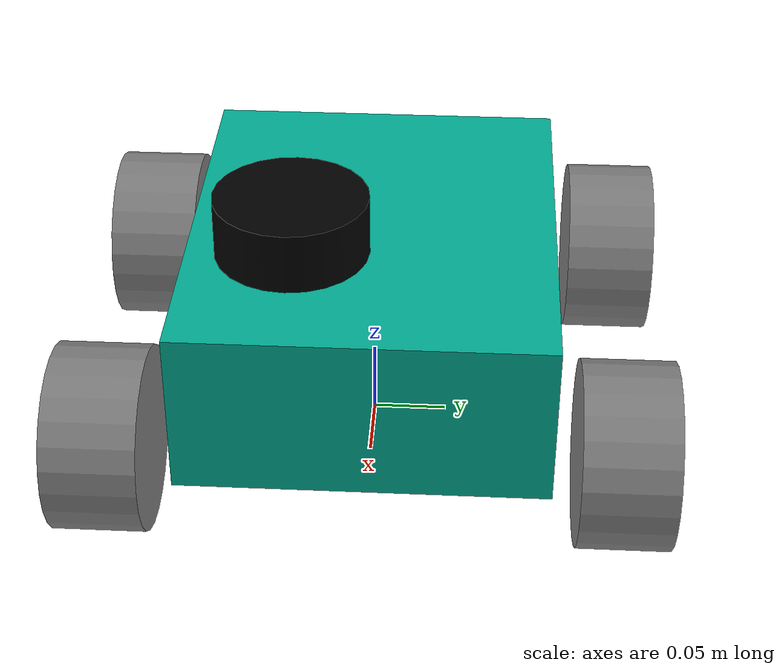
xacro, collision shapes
<?xml version="1.0"?>
<robot xmlns:xacro="http://www.ros.org/wiki/xacro"  name="robot">

    <!-- Example link -->

    <xacro:include filename="inertia.xacro"/>

    <xacro:include filename="kbot_rover.xacro"/>

    <xacro:include filename="lidar.xacro"/>

    <material name="white">
        <color rgba="1 1 1 1"/>
    </material>

    <material name="grey">
        <color rgba="0.5 0.5 0.5 1"/>
    </material>

    <material name="black">
        <color rgba="0 0 0 1"/>
    </material>

    <material name="teal">
        <color rgba="0 0.7 0.6 1"/>
    </material>

    <material name="cyan">
        <color rgba="0 0.5 0.5 1"/>
    </material>

    <material name="green">
        <color rgba="0 0.5 0.1 1"/>
    </material>

    <!-- BASE -->
    <link name="base_link">
    </link>

    <!-- BASE FOOTPRINT -->
    <joint name="base_footprint_joint" type="fixed">
       <parent link="base_link"/>
       <child  link="base_footprint"/>
       <origin xyz="0 0 0" rpy="0 0 0"/>
    </joint>
    <link name="base_footprint">
    </link>

</robot>

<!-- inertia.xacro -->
<robot xmlns:xacro="http://www.ros.org/wiki/xacro" >

    <!-- Specify some standard inertial calculations https://en.wikipedia.org/wiki List_of_moments_of_inertia -->
    <!-- These make use of xacro's mathematical functionality -->

    <xacro:macro name="inertial_sphere" params="mass radius *origin">
        <inertial>
            <xacro:insert_block name="origin"/>
            <mass value="${mass}" />
            <inertia ixx="${(2/5) * mass * (radius*radius)}" ixy="0.0" ixz="0.0"
                    iyy="${(2/5) * mass * (radius*radius)}" iyz="0.0"
                    izz="${(2/5) * mass * (radius*radius)}" />
        </inertial>
    </xacro:macro>

    <xacro:macro name="inertial_box" params="mass x y z *origin">
        <inertial>
            <xacro:insert_block name="origin"/>
            <mass value="${mass}" />
            <inertia ixx="${(1/12) * mass * (y*y+z*z)}" ixy="0.0" ixz="0.0"
                    iyy="${(1/12) * mass * (x*x+z*z)}" iyz="0.0"
                    izz="${(1/12) * mass * (x*x+y*y)}" />
        </inertial>
    </xacro:macro>

    <xacro:macro name="inertial_cylinder" params="mass length radius *origin">
        <inertial>
            <xacro:insert_block name="origin"/>
            <mass value="${mass}" />
            <inertia ixx="${(1/12) * mass * (3*radius*radius + length*length)}" ixy="0.0" ixz="0.0"
                    iyy="${(1/12) * mass * (3*radius*radius + length*length)}" iyz="0.0"
                    izz="${(1/2) * mass * (radius*radius)}" />
        </inertial>
    </xacro:macro>

</robot>

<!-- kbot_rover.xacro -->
<robot name="kbot_rover" xmlns:xacro="http://www.ros.org/wiki/xacro">

    <!-- CHASSIS -->

    <joint name="chassis_joint" type="fixed">
        <parent link="base_link"/>
        <child  link="chassis"/>
        <origin xyz="0.0 0 0.099"/>
    </joint>

    <link name="chassis">
        <visual>
            <origin xyz="0.0 0.0 0.0" rpy="0.0 0.0 0.0"/>
            <geometry>
              <mesh filename="file://$(find kbot)/meshes/chassis_LP.stl"/>
            </geometry>
           <material name="teal"/>
        </visual>

        <collision>
            <geometry>
               <box size="0.30 0.24 0.11"/>
            </geometry>
        </collision>

        <xacro:inertial_box mass="3.2" x="0.3" y="0.24" z="0.11">
            <origin xyz="0.0 0 0.04"/>
        </xacro:inertial_box>
    </link>

    <!-- LEFT Rear WHEELS -->

    <joint name="left_wheel_r_joint" type="continuous">
       <parent link="base_link"/>
       <child link="left_wheel_r"/>
       <origin xyz="-0.125 0.165 0.062" rpy="-1.5708 0 0"/>
       <axis   xyz="0 0 1"/>
    </joint>

    <link name="left_wheel_r">
       <visual>
          <origin xyz="0.0 0.0 0.0" rpy="0.0 0.0 0.0"/>
          <geometry>
              <mesh filename="file://$(find kbot)/meshes/wheel_L_LP.stl" scale="1 1 1"/>

          </geometry>
          <material name="grey"/>
       </visual>

       <collision>
          <geometry>
              <cylinder radius="0.06" length="0.06"/>
          </geometry>
       </collision>
    </link>

    <!-- Right Rear WHEELS -->

    <joint name="right_wheel_r_joint" type="continuous">
       <parent link="base_link"/>
       <child link="right_wheel_r"/>
       <origin xyz="-0.125 -0.165 0.062" rpy="-1.5708 0 0"/>
       <axis   xyz="0 0 1"/>
    </joint>

    <link name="right_wheel_r">
       <visual>
          <geometry>
              <mesh filename="file://$(find kbot)/meshes/wheel_R_LP.stl" scale="1 1 1"/>
          </geometry>
          <material name="grey"/>
       </visual>

       <collision>
          <geometry>
              <cylinder radius="0.06" length="0.06"/>
          </geometry>
       </collision>
    </link>

    <!-- LEFT Front WHEELS -->

    <joint name="left_wheel_f_joint" type="continuous">
       <parent link="base_link"/>
       <child link="left_wheel_f"/>
       <origin xyz="0.125 0.165 0.062" rpy="-1.5708 0 0"/>
       <axis   xyz="0 0 1"/>
    </joint>

    <link name="left_wheel_f">
       <visual>
          <geometry>
              <mesh filename="file://$(find kbot)/meshes/wheel_L_LP.stl" scale="1 1 1"/>
          </geometry>
          <material name="grey"/>
       </visual>

       <collision>
          <geometry>
              <cylinder radius="0.06" length="0.06"/>
          </geometry>
       </collision>
    </link>

    <!-- Right Front WHEELS -->

    <joint name="right_wheel_f_joint" type="continuous">
       <parent link="base_link"/>
       <child link="right_wheel_f"/>
       <origin xyz="0.125 -0.165 0.062" rpy="-1.5708 0 0"/>
       <axis   xyz="0 0 1"/>
    </joint>

    <link name="right_wheel_f">
       <visual>
          <geometry>
              <mesh filename="file://$(find kbot)/meshes/wheel_R_LP.stl" scale="1 1 1"/>
          </geometry>
          <material name="grey"/>
       </visual>

       <collision>
          <geometry>
              <cylinder radius="0.06" length="0.06"/>
          </geometry>
       </collision>
    </link>

</robot>

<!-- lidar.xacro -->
<robot name="lidar" xmlns:xacro="http://www.ros.org/wiki/xacro" >

    <joint name="laser_joint" type="fixed">
        <parent link="chassis"/>
        <child  link="laser_frame"/>
        <origin xyz="0.0 0.0 0.08" rpy="0 0 0"/>
    </joint>

    <link name="laser_frame">
        <visual>
            <origin xyz="0.05 -0.05 0.00" rpy="0 0 0"/>
            <geometry>
                <cylinder radius="0.05" length="0.04"/>
            </geometry>
            <material name="black"/>
        </visual>
        <visual>
            <origin xyz="0.05 -0.05 0.00" rpy="0 0 0"/>
            <geometry>
                <cylinder radius="0.01" length="0.1"/>
            </geometry>
            <material name="black"/>
        </visual>
        <collision>
            <origin xyz="0.05 -0.05 0.00" rpy="0 0 0"/>
            <geometry>
                <cylinder radius="0.05" length="0.04"/>
            </geometry>
        </collision>
        <xacro:inertial_cylinder mass="0.1" length="0.04" radius="0.05">
            <origin xyz="0.05 -0.05 0.00" rpy="0 0 0"/>
        </xacro:inertial_cylinder>
    </link>

</robot>
